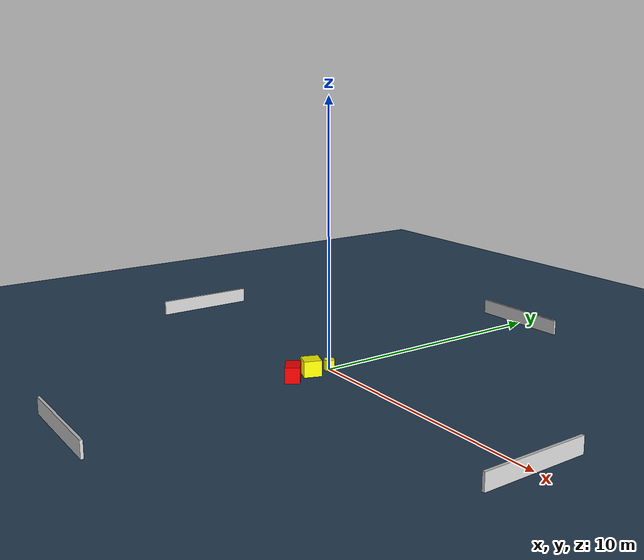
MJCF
<?xml version="1.0" ?>
<mujoco model="generated_environment">
  <option timestep="0.01" integrator="RK4" cone="elliptic"/>
  <default>
    <geom density="1"/>
  </default>
  <asset>
    <texture builtin="gradient" height="3072" name="skybox" rgb1="0.3 0.5 0.7" rgb2="0 0 0" type="skybox" width="512"/>
    <texture builtin="checker" height="300" name="groundplane" rgb1="0.2 0.3 0.4" rgb2="0.1 0.2 0.3" type="2d" width="300"/>
    <material name="groundplane" reflectance="0.2" texrepeat="5 5" texture="groundplane"/>
  </asset>
  <worldbody>
    <light dir="0 0 -1" directional="true" pos="0 0 1.5"/>
    <geom condim="3" friction="0.5 0.005 0.001" material="groundplane" name="floor" pos="0 0 0" size="0 0 0.05" type="plane"/>
    <body name="walls">
      <geom name="wall_1" condim="4" pos="-10.0 0.0 0.3" rgba="0.800000011920929 0.800000011920929 0.800000011920929 1.0" size="0.05 2.0 0.3" type="box"/>
      <geom name="wall_2" condim="4" pos="10.0 0.0 0.3" rgba="0.800000011920929 0.800000011920929 0.800000011920929 1.0" size="0.05 2.0 0.3" type="box"/>
      <geom name="wall_3" condim="4" pos="0.0 -10.0 0.3" rgba="0.800000011920929 0.800000011920929 0.800000011920929 1.0" size="2.0 0.05 0.3" type="box"/>
      <geom name="wall_4" condim="4" pos="0.0 10.0 0.3" rgba="0.800000011920929 0.800000011920929 0.800000011920929 1.0" size="2.0 0.05 0.3" type="box"/>
    </body>
    <body name="robot">
      <joint name="joint_x" type="slide" pos="0 0 0" axis="1 0 0"/>
      <joint name="joint_y" type="slide" pos="0 0 0" axis="0 1 0"/>
      <geom name="robot" type="cylinder" pos="0.0 0.0 0.2" size="0.2 0.2 0.0" mass="5.0" friction="1.0 0.005 0.0001" condim="4" rgba="1.0 1.0 0.0 1.0"/>
    </body>
    <body name="obstacle_1_movable">
      <geom name="obstacle_1_movable" condim="4" pos="0.049813376385298966 -0.8365695132700918 0.3" euler="0 0 69.17090190044028" friction="0.0 0.005 0.001" rgba="1.0 1.0 0.0 1.0" size="0.33024740687678705 0.3133593900086001 0.3" type="box" mass="0.1"/>
      <joint type="free"/>
    </body>
    <body name="obstacle_2_static">
      <geom name="obstacle_2_static" condim="4" pos="0.15537960793377595 -1.6821808187871088 0.3" euler="0 0 144.45940943570272" friction="0.0 0.005 0.001" rgba="1.0 0.0 0.0 1.0" size="0.3866855410878183 0.27117166573044804 0.3" type="box"/>
    </body>
  </worldbody>
  <actuator>
    <motor name="actuator_x" joint="joint_x" gear="1" ctrlrange="-1 1"/>
    <motor name="actuator_y" joint="joint_y" gear="1" ctrlrange="-1 1"/>
  </actuator>
</mujoco>
